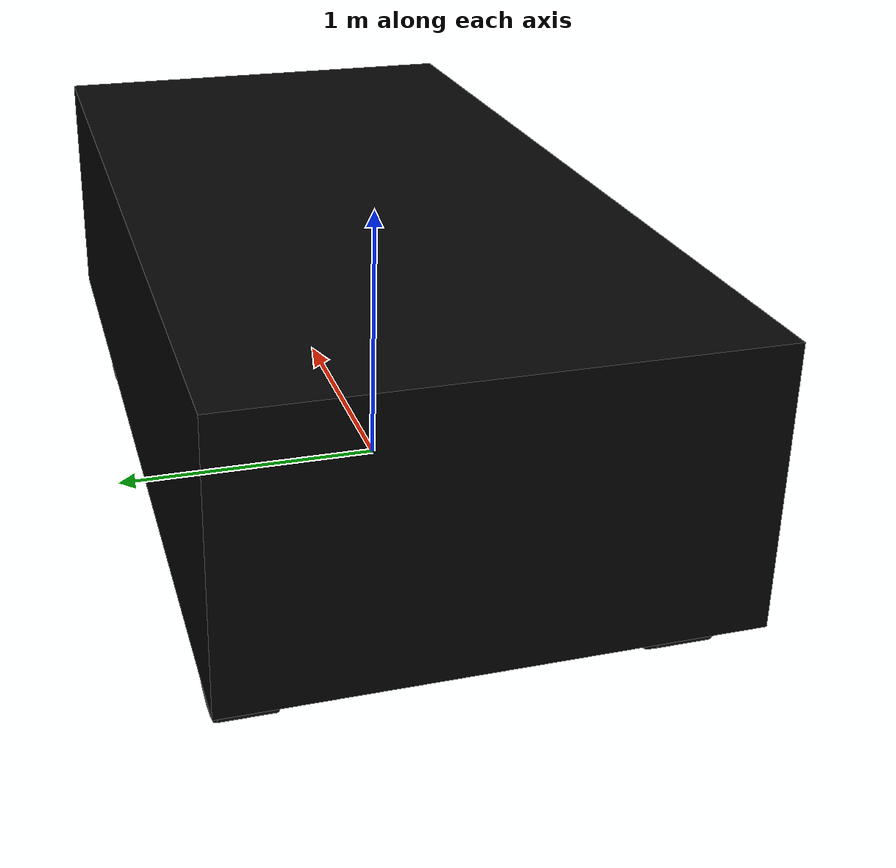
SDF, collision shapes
<?xml version="1.0" ?>
<sdf version="1.6">
  <model name="hatchback_blue">

    <!-- ==================== CHASSIS ==================== -->
    <link name="chassis">
      <inertial>
        <mass>800</mass>
        <pose>0.34 0 0.5 0 0 0</pose>
        <inertia>
          <ixx>200</ixx> <ixy>0</ixy> <ixz>0</ixz>
          <iyy>800</iyy> <iyz>0</iyz>
          <izz>800</izz>
        </inertia>
      </inertial>
      <visual name="visual">
        <pose>0 0 0 0 0 1.57079632679</pose>
        <geometry>
          <mesh>
            <scale>0.0254 0.0254 0.0254</scale>
            <uri>model://hatchback_blue/meshes/hatchback.obj</uri>
          </mesh>
        </geometry>
      </visual>
      <collision name="collision">
        <pose>0.34 0 0.5 0 0 0</pose>
        <geometry>
          <box><size>3.6 1.8 1.0</size></box>
        </geometry>
      </collision>

      <!-- Underbody engine/exhaust heat — visible in thermal as a hot
           region below the car. Thin box spanning the undercarriage. -->
      <visual name="underbody_heat">
        <pose>0.2 0 0.08 0 0 0</pose>
        <geometry>
          <box><size>2.8 1.4 0.05</size></box>
        </geometry>
        <material>
          <ambient>0.02 0.02 0.02 1</ambient>
          <diffuse>0.02 0.02 0.02 1</diffuse>
        </material>
        <transparency>1.0</transparency>
      </visual>
    </link>

    <!-- ==================== FORWARD-FACING CAMERA ==================== -->
    <link name="camera_link">
      <pose>1.2 0 1.2 0 0.3 0</pose>
      <inertial>
        <mass>0.1</mass>
        <inertia>
          <ixx>0.001</ixx><ixy>0</ixy><ixz>0</ixz>
          <iyy>0.001</iyy><iyz>0</iyz><izz>0.001</izz>
        </inertia>
      </inertial>
      <sensor name="front_camera" type="camera">
        <always_on>1</always_on>
        <update_rate>15</update_rate>
        <visualize>true</visualize>
        <topic>car/camera</topic>
        <camera>
          <horizontal_fov>2.094</horizontal_fov>
          <image>
            <width>640</width>
            <height>480</height>
            <format>R8G8B8</format>
          </image>
          <clip>
            <near>0.1</near>
            <far>200</far>
          </clip>
        </camera>
      </sensor>
    </link>

    <joint name="camera_joint" type="fixed">
      <parent>chassis</parent>
      <child>camera_link</child>
    </joint>

    <!-- ==================== STEERING LINKS ==================== -->
    <link name="front_left_steering_link">
      <pose>1.6 0.75 0 0 0 0</pose>
      <inertial>
        <mass>1.0</mass>
        <inertia>
          <ixx>0.01</ixx> <ixy>0</ixy> <ixz>0</ixz>
          <iyy>0.01</iyy> <iyz>0</iyz>
          <izz>0.01</izz>
        </inertia>
      </inertial>
    </link>

    <link name="front_right_steering_link">
      <pose>1.6 -0.75 0 0 0 0</pose>
      <inertial>
        <mass>1.0</mass>
        <inertia>
          <ixx>0.01</ixx> <ixy>0</ixy> <ixz>0</ixz>
          <iyy>0.01</iyy> <iyz>0</iyz>
          <izz>0.01</izz>
        </inertia>
      </inertial>
    </link>

    <!-- ==================== WHEEL LINKS ==================== -->
    <!-- Wheels now have visuals (dark cylinders) so they appear in
         the thermal camera as heat sources at ground level. -->

    <!-- Front Left Wheel -->
    <link name="front_left_wheel">
      <pose>1.6 0.75 0 -1.5707963 0 0</pose>
      <inertial>
        <mass>15</mass>
        <inertia>
          <ixx>0.5</ixx> <ixy>0</ixy> <ixz>0</ixz>
          <iyy>0.5</iyy> <iyz>0</iyz>
          <izz>0.8</izz>
        </inertia>
      </inertial>
      <visual name="tire_visual">
        <geometry>
          <cylinder><radius>0.30</radius><length>0.20</length></cylinder>
        </geometry>
        <material>
          <ambient>0.05 0.05 0.05 1</ambient>
          <diffuse>0.05 0.05 0.05 1</diffuse>
        </material>
      </visual>
      <collision name="collision">
        <geometry>
          <cylinder><radius>0.30</radius><length>0.20</length></cylinder>
        </geometry>
        <surface>
          <friction>
            <ode>
              <mu>2.0</mu>
              <mu2>1.5</mu2>
            </ode>
          </friction>
        </surface>
      </collision>
    </link>

    <!-- Front Right Wheel -->
    <link name="front_right_wheel">
      <pose>1.6 -0.75 0 -1.5707963 0 0</pose>
      <inertial>
        <mass>15</mass>
        <inertia>
          <ixx>0.5</ixx> <ixy>0</ixy> <ixz>0</ixz>
          <iyy>0.5</iyy> <iyz>0</iyz>
          <izz>0.8</izz>
        </inertia>
      </inertial>
      <visual name="tire_visual">
        <geometry>
          <cylinder><radius>0.30</radius><length>0.20</length></cylinder>
        </geometry>
        <material>
          <ambient>0.05 0.05 0.05 1</ambient>
          <diffuse>0.05 0.05 0.05 1</diffuse>
        </material>
      </visual>
      <collision name="collision">
        <geometry>
          <cylinder><radius>0.30</radius><length>0.20</length></cylinder>
        </geometry>
        <surface>
          <friction>
            <ode>
              <mu>2.0</mu>
              <mu2>1.5</mu2>
            </ode>
          </friction>
        </surface>
      </collision>
    </link>

    <!-- Rear Left Wheel -->
    <link name="rear_left_wheel">
      <pose>-1.0 0.75 0 -1.5707963 0 0</pose>
      <inertial>
        <mass>15</mass>
        <inertia>
          <ixx>0.5</ixx> <ixy>0</ixy> <ixz>0</ixz>
          <iyy>0.5</iyy> <iyz>0</iyz>
          <izz>0.8</izz>
        </inertia>
      </inertial>
      <visual name="tire_visual">
        <geometry>
          <cylinder><radius>0.30</radius><length>0.20</length></cylinder>
        </geometry>
        <material>
          <ambient>0.05 0.05 0.05 1</ambient>
          <diffuse>0.05 0.05 0.05 1</diffuse>
        </material>
      </visual>
      <collision name="collision">
        <geometry>
          <cylinder><radius>0.30</radius><length>0.20</length></cylinder>
        </geometry>
        <surface>
          <friction>
            <ode>
              <mu>2.0</mu>
              <mu2>1.5</mu2>
            </ode>
          </friction>
        </surface>
      </collision>
    </link>

    <!-- Rear Right Wheel -->
    <link name="rear_right_wheel">
      <pose>-1.0 -0.75 0 -1.5707963 0 0</pose>
      <inertial>
        <mass>15</mass>
        <inertia>
          <ixx>0.5</ixx> <ixy>0</ixy> <ixz>0</ixz>
          <iyy>0.5</iyy> <iyz>0</iyz>
          <izz>0.8</izz>
        </inertia>
      </inertial>
      <visual name="tire_visual">
        <geometry>
          <cylinder><radius>0.30</radius><length>0.20</length></cylinder>
        </geometry>
        <material>
          <ambient>0.05 0.05 0.05 1</ambient>
          <diffuse>0.05 0.05 0.05 1</diffuse>
        </material>
      </visual>
      <collision name="collision">
        <geometry>
          <cylinder><radius>0.30</radius><length>0.20</length></cylinder>
        </geometry>
        <surface>
          <friction>
            <ode>
              <mu>2.0</mu>
              <mu2>1.5</mu2>
            </ode>
          </friction>
        </surface>
      </collision>
    </link>

    <!-- ==================== STEERING JOINTS ==================== -->
    <joint name="front_left_steering_joint" type="revolute">
      <parent>chassis</parent>
      <child>front_left_steering_link</child>
      <axis>
        <xyz>0 0 1</xyz>
        <limit>
          <lower>-0.6</lower>
          <upper>0.6</upper>
          <effort>1e6</effort>
        </limit>
      </axis>
    </joint>

    <joint name="front_right_steering_joint" type="revolute">
      <parent>chassis</parent>
      <child>front_right_steering_link</child>
      <axis>
        <xyz>0 0 1</xyz>
        <limit>
          <lower>-0.6</lower>
          <upper>0.6</upper>
          <effort>1e6</effort>
        </limit>
      </axis>
    </joint>

    <!-- ==================== WHEEL JOINTS ==================== -->
    <joint name="front_left_wheel_joint" type="revolute">
      <parent>front_left_steering_link</parent>
      <child>front_left_wheel</child>
      <axis>
        <xyz>0 0 1</xyz>
        <limit>
          <lower>-1.79769e+308</lower>
          <upper>1.79769e+308</upper>
        </limit>
      </axis>
    </joint>

    <joint name="front_right_wheel_joint" type="revolute">
      <parent>front_right_steering_link</parent>
      <child>front_right_wheel</child>
      <axis>
        <xyz>0 0 1</xyz>
        <limit>
          <lower>-1.79769e+308</lower>
          <upper>1.79769e+308</upper>
        </limit>
      </axis>
    </joint>

    <joint name="rear_left_wheel_joint" type="revolute">
      <parent>chassis</parent>
      <child>rear_left_wheel</child>
      <axis>
        <xyz>0 0 1</xyz>
        <limit>
          <lower>-1.79769e+308</lower>
          <upper>1.79769e+308</upper>
        </limit>
      </axis>
    </joint>

    <joint name="rear_right_wheel_joint" type="revolute">
      <parent>chassis</parent>
      <child>rear_right_wheel</child>
      <axis>
        <xyz>0 0 1</xyz>
        <limit>
          <lower>-1.79769e+308</lower>
          <upper>1.79769e+308</upper>
        </limit>
      </axis>
    </joint>

    <!-- ==================== THERMAL TEMPERATURE ==================== -->
    <!-- Running car: ~45 C (318 K). Gazebo assigns this uniformly to
         all visuals (body mesh + tires + underbody heat plane).
         Limitation: can't do per-link gradient within one model. -->
    <plugin filename="gz-sim-thermal-system"
            name="gz::sim::systems::Thermal">
      <temperature>318</temperature>
    </plugin>

    <!-- ==================== ACKERMANN STEERING PLUGIN ==================== -->
    <plugin filename="gz-sim-ackermann-steering-system"
            name="gz::sim::systems::AckermannSteering">
      <left_joint>front_left_wheel_joint</left_joint>
      <left_joint>rear_left_wheel_joint</left_joint>
      <right_joint>front_right_wheel_joint</right_joint>
      <right_joint>rear_right_wheel_joint</right_joint>
      <left_steering_joint>front_left_steering_joint</left_steering_joint>
      <right_steering_joint>front_right_steering_joint</right_steering_joint>
      <wheel_separation>1.5</wheel_separation>
      <kingpin_width>1.3</kingpin_width>
      <wheel_base>2.6</wheel_base>
      <wheel_radius>0.30</wheel_radius>
      <steering_limit>0.6</steering_limit>
      <max_velocity>20.0</max_velocity>
      <max_acceleration>10.0</max_acceleration>
    </plugin>

  </model>
</sdf>
